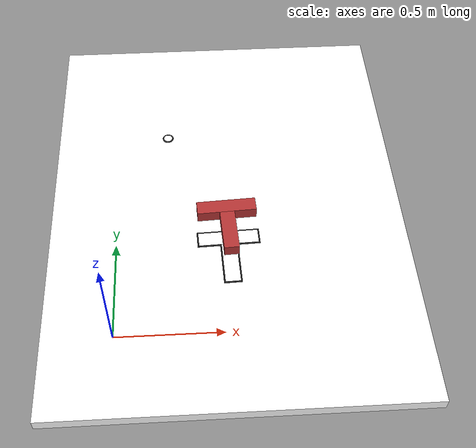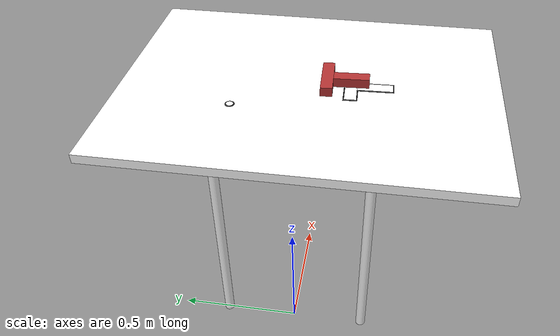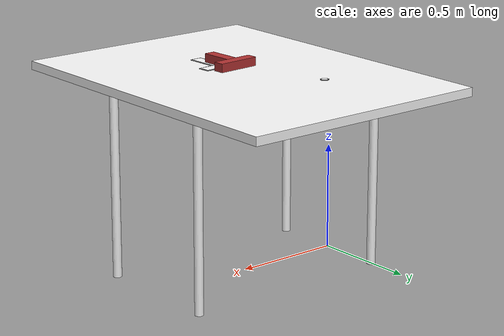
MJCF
<mujoco model="table_with_pusht">
  <asset>
    <material name="white_mat" rgba="1 1 1 1" specular="0.5" shininess="0.1"/>
  </asset>

<default>
    <default class="pusht_collision">
        <geom type="box" density="500" rgba="0.7 0.2 0.2 1"
              friction="1 0.005 0.0001"
              solref="0.01 1"
              solimp="0.9 0.95 0.001"/>
    </default>
    <!-- 目标T形线条粗细 -->
    <default class="outline_line">
        <geom type="capsule" size="0.005" rgba="0 0 0 1" contype="0" conaffinity="0"/>
    </default>
  </default>

  <worldbody>
    <body name="table" pos="0.5 0 0">
      <geom name="table_top" type="box" size="0.6 0.8 0.02" pos="0 0 0.9"  material="white_mat" friction="1 0.005 0.0001" solref="0.02 1" solimp="0.95 0.99 0.001"/>
      <geom name="leg1" type="cylinder" size="0.02 0.44" pos="0.5 0.3 0.44" material="white_mat"/>
      <geom name="leg2" type="cylinder" size="0.02 0.44" pos="-0.5 0.3 0.44" material="white_mat"/>
      <geom name="leg3" type="cylinder" size="0.02 0.44" pos="0.5 -0.3 0.44" material="white_mat"/>
      <geom name="leg4" type="cylinder" size="0.02 0.44" pos="-0.5 -0.3 0.44" material="white_mat"/>
    </body>

    <body name="pusht_block" pos="0.5 -0.15 0.95" euler="0 0 3">
      <freejoint/>
      <!-- T形的横和竖，这里是分开的 -->
      <geom class="pusht_collision" name="t_bar_top" size="0.1 0.025 0.02" pos="0 0.075 0"/>
      <geom class="pusht_collision" name="t_bar_stem" size="0.025 0.075 0.02" pos="0 -0.025 0"/>
    </body>

    <body name="goal_target" euler="0 0 2" pos="0.50 -0.25 0.921">
       <geom type="box" size="0.1 0.025 0.001" pos="0 0.075 0.001"
             material="white_mat" contype="0" conaffinity="0"/>
      <geom type="box" size="0.105 0.030 0.001" pos="0 0.075 0"
             rgba="0 0 0 1" contype="0" conaffinity="0"/>
       <geom type="box" size="0.025 0.075 0.001" pos="0 -0.025 0.001"
             material="white_mat" contype="0" conaffinity="0"/>
       <geom type="box" size="0.030 0.080 0.001" pos="0 -0.025 0"
             rgba="0 0 0 1" contype="0" conaffinity="0"/>
    </body>
    <body name="bullseye_target" pos="0.3 0.3 0.921">
        <geom type="cylinder" size="0.02 0.001" rgba="0 0 0 1" contype="0" conaffinity="0"/>

        <geom type="cylinder" size="0.015 0.001" pos="0 0 0.001" material="white_mat" contype="0" conaffinity="0"/>
    </body>
  </worldbody>
</mujoco>
